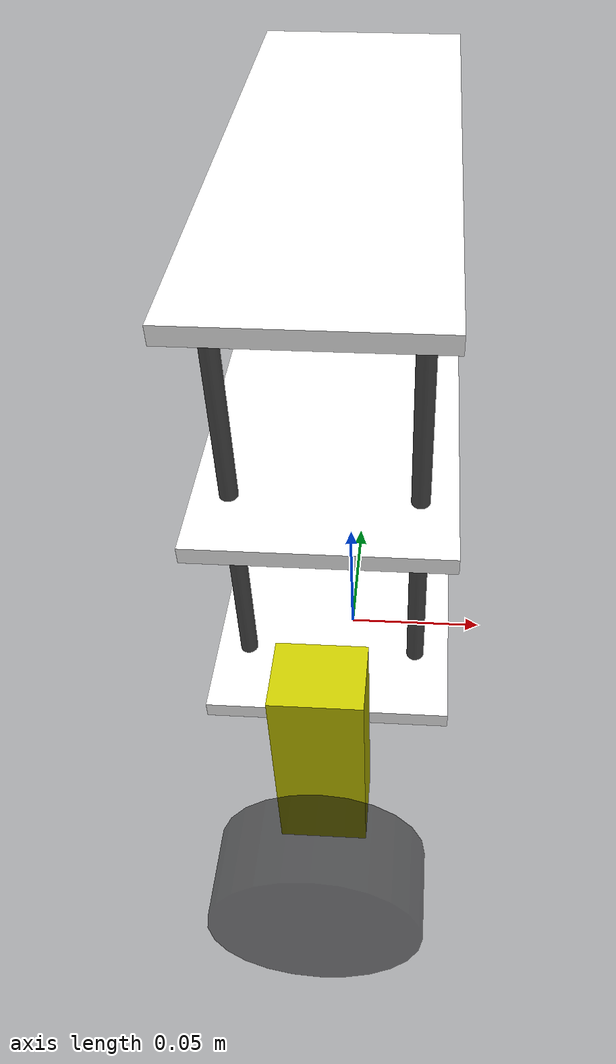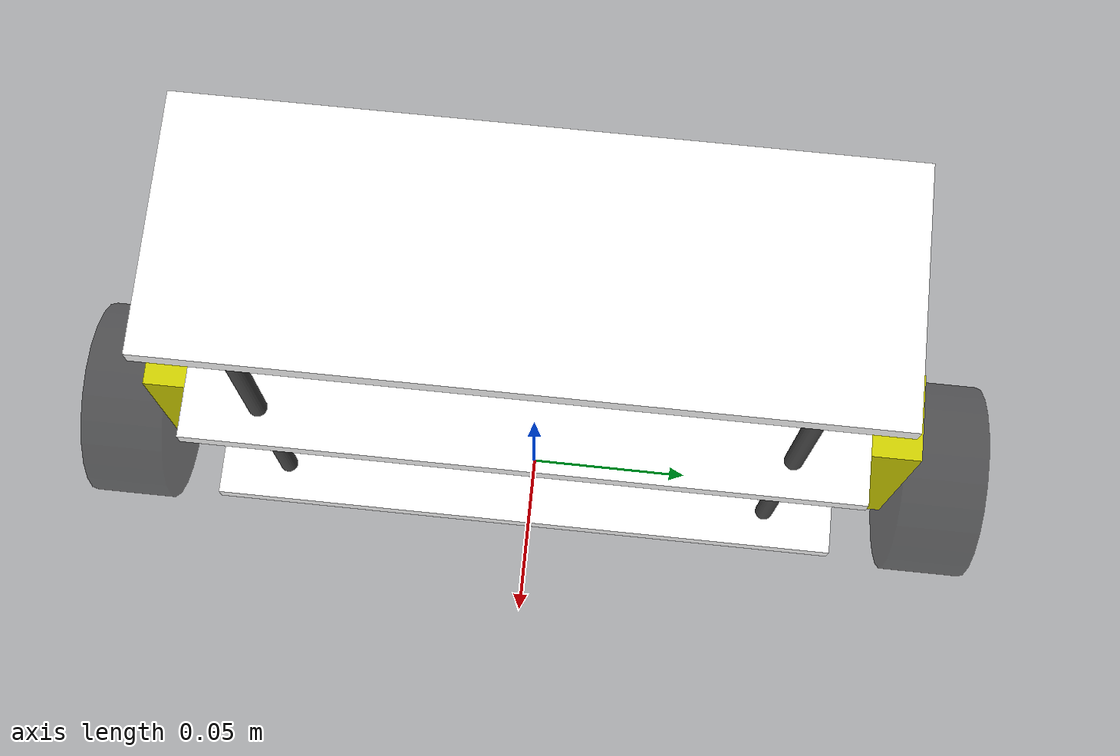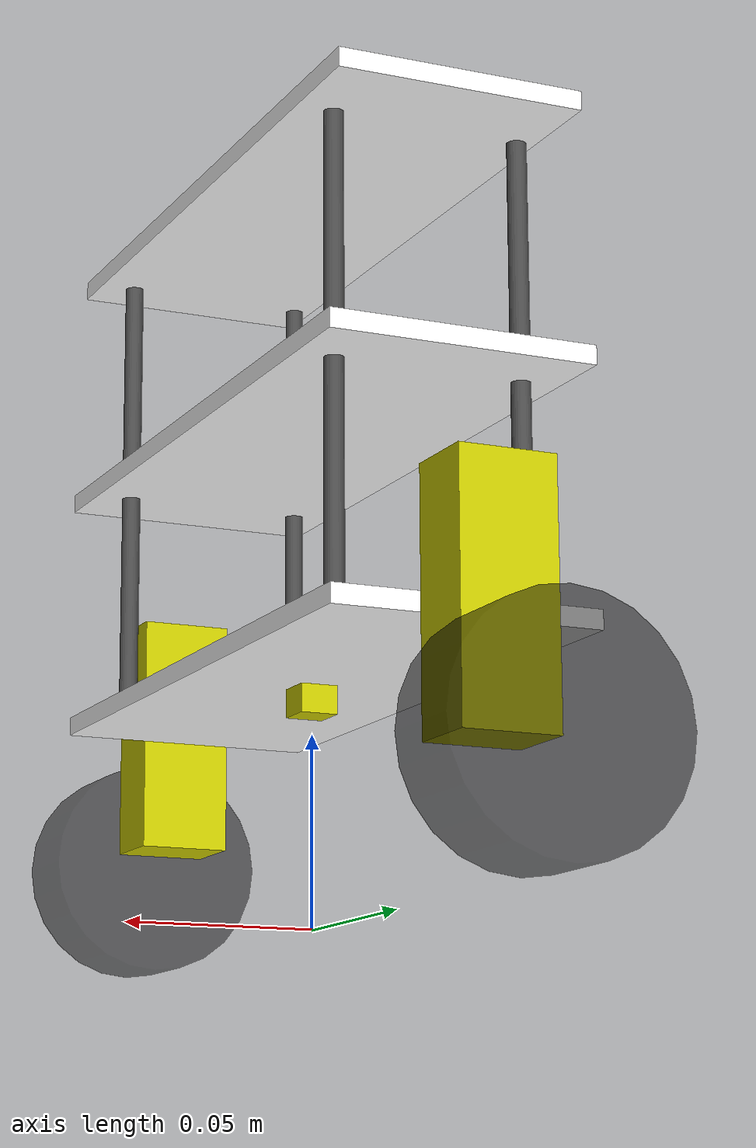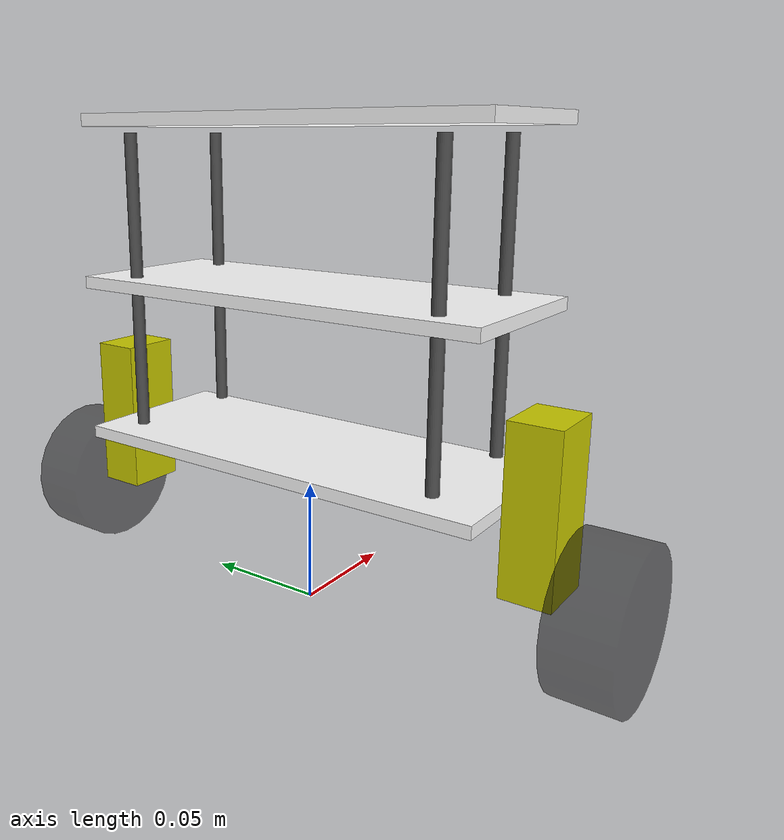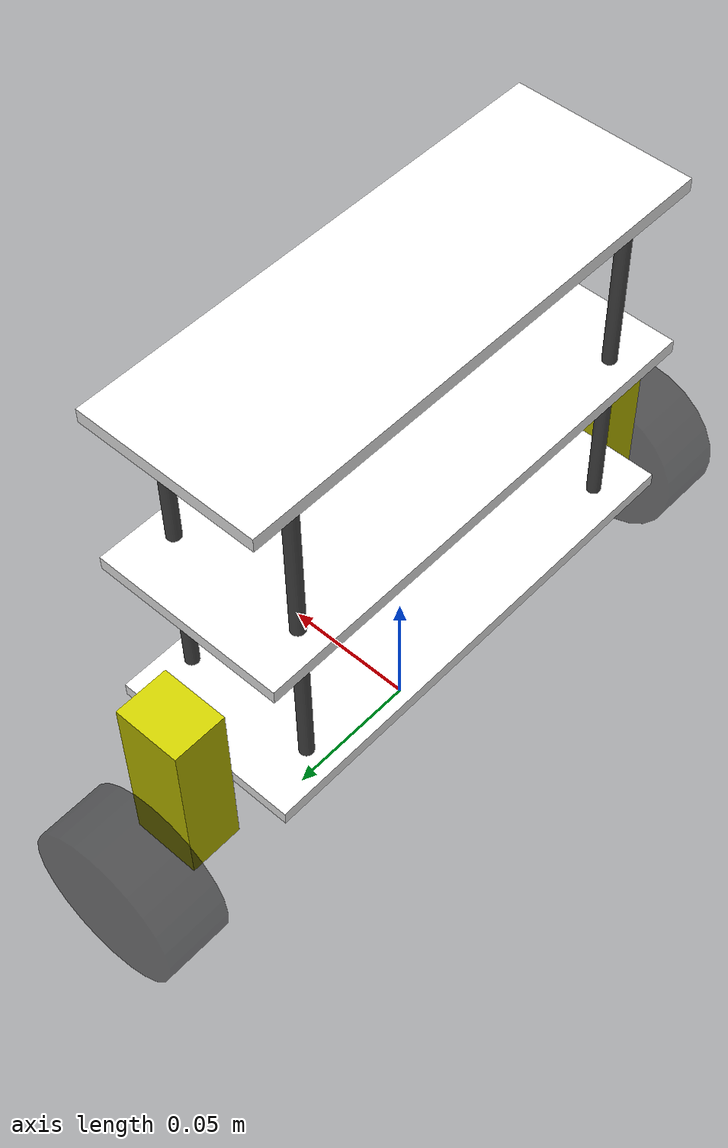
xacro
<?xml version="1.0"?>
<robot name="self_balance" xmlns:xacro="http://ros.org/wiki/xacro">

  <material name="branco">
    <color rgba="1 1 1 1"/>
  </material>

  <material name="azul">
    <color rgba="0 0 1 1"/>
  </material>

  <material name="preto">
    <color rgba="0 0 0 0.5"/>
  </material>

  <material name="cinza">
    <color rgba="0.3 0.3 0.3 1"/>
  </material>

  <material name="amarelo">
    <color rgba="0.8 0.8 0.0 1.0"/>
  </material>

  <!-- base link-->

  <link name="base_link">

  </link>

  <!--primeira base-->

  <joint name="primeira_origem" type="fixed">

    <parent link="base_link"/>

    <child link="primeira_base"/>

    <origin rpy="0.0 0.0 0.0" xyz="0.0 0.0 0.065"/>

  </joint>

  <link name="primeira_base">
    <visual>
      <origin rpy="0.0 0.0 0.0" xyz="0.0 0.0 0.0"/>
      <geometry>
        <box size="0.07 0.18 0.005"/>
      </geometry>
      <material name="branco" />
    </visual>
  </link>

<!-- segunda base -->

   <joint name="segunda_base_joint" type="fixed">

    <parent link="base_link"/>

    <child link="segunda_base"/>

    <origin rpy="0.0 0.0 0.0" xyz="0.0 0.0 0.13"/>

  </joint>

  <link name="segunda_base">
    <visual>
        <origin rpy="0.0 0.0 0.0" xyz="0.0 0.0 0.0"/>
        <geometry>
            <box size="0.07 0.18 0.005"/>
        </geometry>
        <material name="branco"/>
    </visual>
  </link>

  <!-- Terceira Base -->

  <joint name="terceira_base_joint" type="fixed">

    <parent link="base_link"/>
    <child link="terceira_base"/>
    <origin rpy="0.0 0.0 0.0" xyz="0.0 0.0 0.195"/>

  </joint>
  <link name="terceira_base">
    <visual>
      <origin rpy="0.0 0.0 0.0" xyz="0.0 0.0 0.0"/>
      <geometry>
        <box size="0.065 0.18 0.005"/>
      </geometry>
      <material name="branco"/>
    </visual>
  </link>

  <!-- hastes direita frontal -->

  <joint name="haste_direita_f_joint" type="fixed">

    <parent link="base_link"/>
    <child link="haste_direita_f"/>
    <origin rpy="0.0 0.0 0.0" xyz="0.025 0.07 0.13"/>

  </joint>

  <link name="haste_direita_f">
    <visual>
      <origin rpy="0.0 0.0 0.0" xyz="0.0 0.0 0.0"/>
      <geometry>
        <cylinder radius="0.0025" length="0.12"/>
      </geometry>
      <material name="cinza"/>
    </visual>
  </link>

<!-- haste direita inferior -->

  <joint name="haste_direita_i_joint" type="fixed">

    <parent link="base_link"/>
    <child link="haste_direita_i"/>
    <origin rpy="0.0 0.0 0.0" xyz="-0.025 0.07 0.13"/>

  </joint>

  <link name="haste_direita_i">
    <visual>
      <origin rpy="0.0 0.0 0.0" xyz="0.0 0.0 0.0"/>
      <geometry>
        <cylinder radius="0.0025" length="0.12"/>
      </geometry>
      <material name="cinza"/>
    </visual>
  </link>

<!-- haste esquerda frente -->

  <joint name="haste_esquerda_f_joint" type="fixed">

    <parent link="base_link"/>
    <child link="haste_esquerda_f"/>
    <origin rpy="0.0 0.0 0.0" xyz="0.025 -0.07 0.13"/>

  </joint>

  <link name="haste_esquerda_f">
    <visual>
      <origin rpy="0.0 0.0 0.0" xyz="0.0 0.0 0.0"/>
      <geometry>
        <cylinder radius="0.0025" length="0.12"/>
      </geometry>
      <material name="cinza"/>
    </visual>
  </link>

<!-- haste esquerda inferior -->

  <joint name="haste_esquerda_i_joint" type="fixed">

    <parent link="base_link"/>
    <child link="haste_esquerda_i"/>
    <origin rpy="0.0 0.0 0.0" xyz="-0.025 -0.07 0.13"/>

  </joint>

  <link name="haste_esquerda_i">
    <visual>
      <origin rpy="0.0 0.0 0.0" xyz="0.0 0.0 0.0"/>
      <geometry>
        <cylinder radius="0.0025" length="0.12"/>
      </geometry>
      <material name="cinza"/>
    </visual>
  </link>

<!-- motor esquerdo -->

  <joint name="motor_e_joint" type="fixed">

    <parent link="base_link"/>
    <child link="motor_esquerdo"/>
    <origin rpy="0.0 0.0 0.0" xyz="0 -0.10 0.065"/>

  </joint>

  <link name="motor_esquerdo">
    <visual>
      <origin rpy="0.0 0.0 0.0" xyz="0.0 0.0 0.0"/>
      <geometry>
        <box size="0.025 0.02 0.065"/>
      </geometry>
      <material name="amarelo"/>
    </visual>
  </link>

<!-- motor direito -->

  <joint name="motor_d_joint" type="fixed">

    <parent link="base_link"/>
    <child link="motor_direito"/>
    <origin rpy="0.0 0.0 0.0" xyz="0 0.10 0.065"/>

  </joint>

  <link name="motor_direito">
    <visual>
      <origin rpy="0.0 0.0 0.0" xyz="0.0 0.0 0.0"/>
      <geometry>
        <box size="0.025 0.02 0.065"/>
      </geometry>
      <material name="amarelo"/>
    </visual>
  </link>

  <!-- roda esquerda -->

  <joint name="roda_e_joint" type="continuous">
    <axis xyz="0 1 0"/>
    <parent link="base_link"/>
    <child link="roda_esquerda"/>
    <origin rpy="0.0 0.0 0.0" xyz="0 -0.125 0.03"/>

  </joint>

  <link name="roda_esquerda">
    <visual>
      <origin rpy="1.5714 0.0 0.0" xyz="0.0 0.0 0.0"/>
      <geometry>
        <cylinder radius="0.03" length="0.025"/>
      </geometry>
      <material name="preto"/>
    </visual>
  </link>

  <!-- roda direita -->

  <joint name="roda_d_joint" type="continuous">
    <axis xyz="0 1 0"/>
    <parent link="base_link"/>
    <child link="roda_direita"/>
    <origin rpy="0.0 0.0 0.0" xyz="0 0.125 0.03"/>

  </joint>

  <link name="roda_direita">
    <visual>
      <origin rpy="1.5714 0.0 0.0" xyz="0.0 0.0 0.0"/>
      <geometry>
        <cylinder radius="0.03" length="0.025"/>
      </geometry>
      <material name="preto"/>
    </visual>
  </link>

  <!--teste-->

  <joint name="teste_roda_joint" type="continuous">
    <axis xyz="0 1 0"/>
    <parent link="roda_esquerda"/>
    <child link="teste"/>
    <origin rpy="0.0 0.0 0.0" xyz="0 0.125 0.03"/>

  </joint>

 <link name="teste">
    <visual>
      <origin rpy="1.5714 0.0 0.0" xyz="0.0 0.0 0.0"/>
      <geometry>
        <box size="0.010 0.010 0.010"/>
      </geometry>
      <material name="amarelo"/>
    </visual>
  </link>

</robot>
